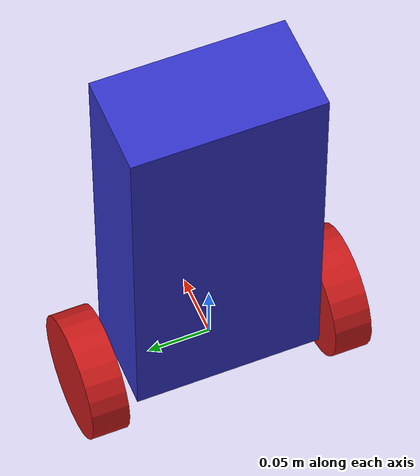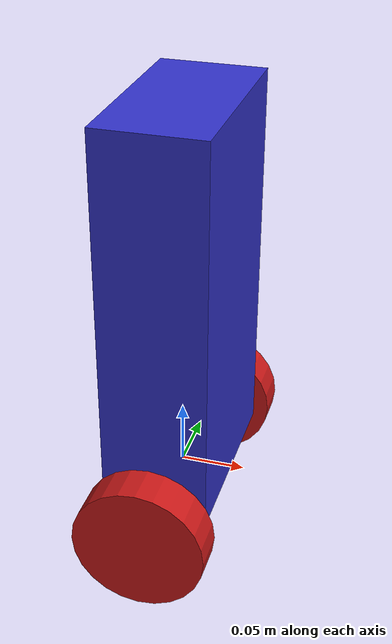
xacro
<?xml version="1.0"?>

<robot name="balance_bot"
    xmlns:xacro="http://www.ros.org/wiki/xacro">

    <!-- Colours/Materials -->
    <xacro:include filename="materials.xacro"/>
    <!-- Inertial properties -->
    <xacro:include filename="inertial_macros.xacro"/>

    <!-- dimensional constants -->
    <xacro:property name="body_height" value="0.3" />
    <xacro:property name="body_width" value="0.15" />
    <xacro:property name="body_depth" value="0.08" />

    <xacro:property name="wheel_radius" value="0.05" />
    <xacro:property name="wheel_width" value="0.03" />

    <!-- groud clearance will be same as wheel radius -->
    <xacro:property name="ground_clearance" value="0.05" />

    <xacro:property name="body_mass" value="1.0" />
    <xacro:property name="wheel_mass" value="0.1" />

    <!-- Robot Parts -->
    <xacro:include filename="body.xacro"/>
    <xacro:include filename="wheels.xacro"/>
    <xacro:include filename="imu.xacro"/>

    <!-- Gazebo plugins -->
    <xacro:include filename="gazebo.xacro"/>
    <!-- ROS2 Control Plugin -->
    <xacro:include filename="ros2_control.xacro"/>

</robot>

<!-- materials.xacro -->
<robot xmlns:xacro="http://www.ros.org/wiki/xacro">

    <material name="white">
        <color rgba="1.0 1.0 1.0 1"/>
    </material>

    <material name="black">
        <color rgba="0.0 0.0 0.0 1"/>
    </material>

    <material name="grey">
        <color rgba="0.4 0.4 0.4 1"/>
    </material>

    <material name="red">
        <color rgba="0.8 0.1 0.1 1"/>
    </material>

    <material name="green">
        <color rgba="0.0 0.4 0.0 1"/>
    </material>

    <material name="blue">
        <color rgba="0.2 0.2 0.8 1"/>
    </material>

</robot>

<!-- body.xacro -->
<robot xmlns:xacro="http://www.ros.org/wiki/xacro">

    <link name="base_link">
    </link>

    <joint name="base_joint" type="fixed">
        <parent link="base_link"/>
        <child link="body_link"/>
    </joint>

    <link name="body_link">
        <visual>
            <origin xyz="0 0 ${body_height/2}" />
            <geometry>
                <box size="${body_depth} ${body_width} ${body_height}" />
            </geometry>
            <material name="blue"></material>
        </visual>

        <collision>
            <origin xyz="0 0 ${body_height/2}" />
            <geometry>
                <box size="${body_depth} ${body_width} ${body_height}" />
            </geometry>
        </collision>

        <xacro:inertial_box mass="${body_mass}" x="${body_depth}" y="${body_width}" z="${body_height}">
            <origin xyz="0.0 0.0 ${body_height/2}"/>
        </xacro:inertial_box>
    </link>

</robot>

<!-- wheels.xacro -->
<robot xmlns:xacro="http://www.ros.org/wiki/xacro">
    <link name="left_wheel_link">
        <visual>
            <origin rpy="${pi/2} 0 0"/>
            <geometry>
            <cylinder radius="${wheel_radius}"
                        length="${wheel_width}"/>
            </geometry>
            <material name="red"></material>
        </visual>

        <collision>
            <origin rpy="${pi/2} 0 0"/>
            <geometry>
            <cylinder radius="${wheel_radius}"
                        length="${wheel_width}"/>
            </geometry>
        </collision>

        <xacro:inertial_cylinder mass="${wheel_mass}" radius="${wheel_radius}" length="${wheel_width}">
            <origin xyz="0 0 0"/>
        </xacro:inertial_cylinder>
    </link>

    <joint name="left_wheel_joint" type="continuous">
        <parent link="body_link"/>
        <child link="left_wheel_link"/>
        <origin xyz="0 ${body_width/2 + wheel_width/2 + 0.01} 0"/>
        <axis xyz="0 1 0"/>
    </joint>

    <link name="right_wheel_link">
        <visual>
            <origin rpy="${-pi/2} 0 0"/>
            <geometry>
            <cylinder radius="${wheel_radius}"
                        length="${wheel_width}"/>
            </geometry>
            <material name="red"></material>
        </visual>

        <collision>
            <origin rpy="${-pi/2} 0 0"/>
            <geometry>
            <cylinder radius="${wheel_radius}"
                        length="${wheel_width}"/>
            </geometry>
        </collision>

        <xacro:inertial_cylinder mass="${wheel_mass}" radius="${wheel_radius}" length="${wheel_width}">
            <origin xyz="0 0 0"/>
        </xacro:inertial_cylinder>
    </link>

    <joint name="right_wheel_joint" type="continuous">
        <parent link="body_link"/>
        <child link="right_wheel_link"/>
        <origin xyz="0 -${body_width/2 + wheel_width/2 + 0.01} 0"/>
        <axis xyz="0 1 0"/>
    </joint>
</robot>

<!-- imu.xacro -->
<robot xmlns:xacro="http://www.ros.org/wiki/xacro">

    <link name="imu_link">
        <visual>
            <origin xyz="0 0 0" />
            <geometry>
                <box size="0.02 0.02 0.01" />
            </geometry>
            <material name="green"></material>
        </visual>
        <xacro:inertial_box mass="0.001" x="0.02" y="0.02" z="0.01">
            <origin xyz="0 0 0"/>
        </xacro:inertial_box>
    </link>

    <joint name="imu_joint" type="fixed">
        <parent link="body_link" />
        <child link="imu_link" />
        <!-- Place IMU near the wheel axle -->
        <origin xyz="0 0 0" />
    </joint>

</robot>
